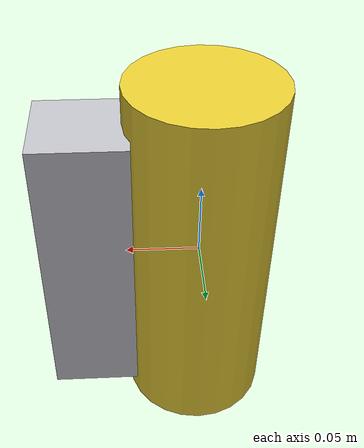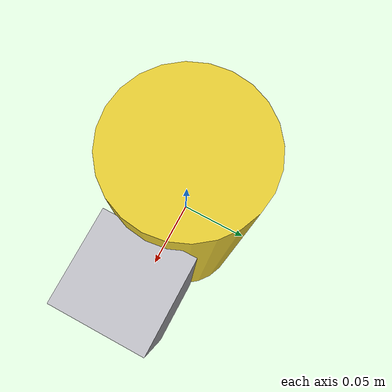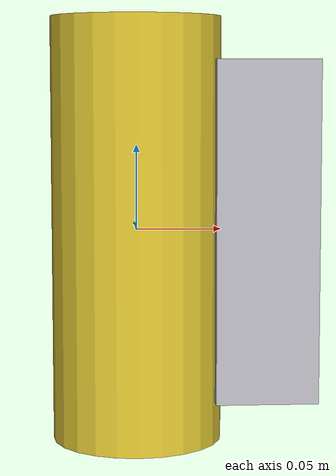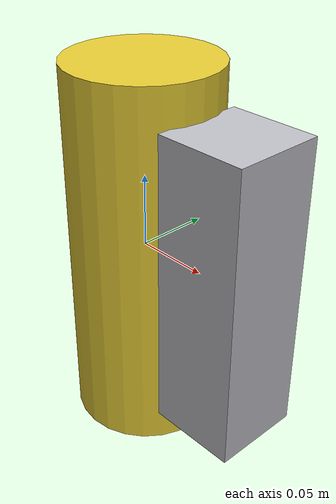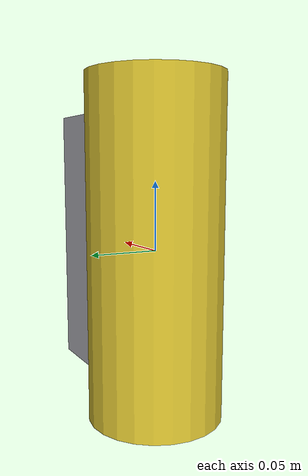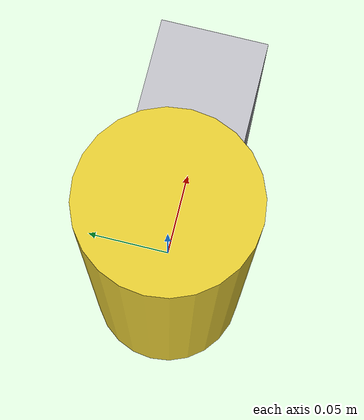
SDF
<?xml version="1.0" ?>
<sdf version="1.5">
    <model name="camera_with_lrf">
    <static>false</static>

    <link name="cwlrf_camera">

        <collision name="collision">
            <geometry>
                <cylinder>
                    <radius>0.05</radius>
                    <length>0.25</length>
                </cylinder>
            </geometry>
            <surface>
                <friction>
                <ode>
                    <mu>0.35</mu>
                    <mu>0.55</mu>
                </ode>
                </friction>
            </surface>
        </collision>

        <intertial>
            <mass>5</mass>
        </intertial>

        <visual name="visual-cam">
            <geometry>
                <cylinder>
                    <radius>0.05</radius>
                    <length>0.25</length>
                </cylinder>
            </geometry>
            <material>
                <script>
                    <uri>file://media/materials/scripts/gazebo.material</uri>
                    <name>Gazebo/ZincYellow</name>
                </script>
            </material>
        </visual>

        <visual name="visual-lrf">
            <pose>0.075 0 0 0 0 0</pose>
            <geometry>
                <box>
                    <size>0.06 0.06 0.20</size>
                </box>
            </geometry>
            <material>
                <script>
                    <uri>file://media/materials/scripts/gazebo.material</uri>
                    <name>Gazebo/Silver</name>
                </script>
            </material>
        </visual>

        <sensor type="camera" name="eo_cam">
            <update_rate>10.0</update_rate>
            <pose>0 0 -0.1 0 1.5707 0</pose>
            <visualize>true</visualize>

            <camera name="head">
                <horizontal_fov>1.3962634</horizontal_fov>
                <image>
                    <width>800</width>
                    <height>600</height>
                    <format>R8G8B8</format>
                </image>
                <clip>
                    <near>0.02</near>
                    <far>300</far>
                </clip>
                <noise>
                    <type>gaussian</type>
                    <mean>0.0</mean>
                    <stddev>0.007</stddev>
                </noise>
            </camera>
            <plugin name="camera_controller" filename="libgazebo_ros_camera.so">
                <alwaysOn>true</alwaysOn>
                <updateRate>0.0</updateRate>
                <cameraName>payload/eo_cam</cameraName>
                <imageTopicName>image_raw</imageTopicName>
                <cameraInfoTopicName>camera_info</cameraInfoTopicName>
                <frameName>map</frameName>
                <hackBaseline>0.07</hackBaseline>
                <distortionK1>0.0</distortionK1>
                <distortionK2>0.0</distortionK2>
                <distortionK3>0.0</distortionK3>
                <distortionT1>0.0</distortionT1>
                <distortionT2>0.0</distortionT2>
            </plugin>
        </sensor>
    </link>

  </model>
</sdf>
